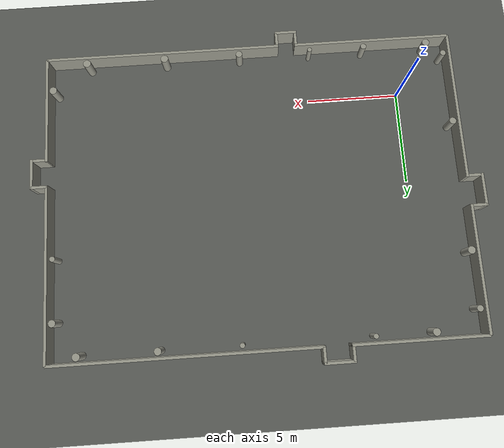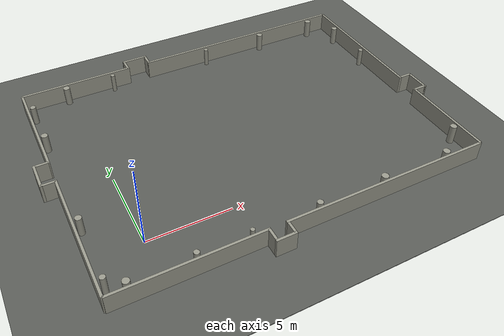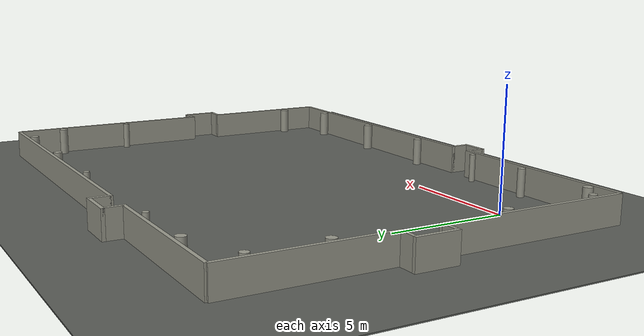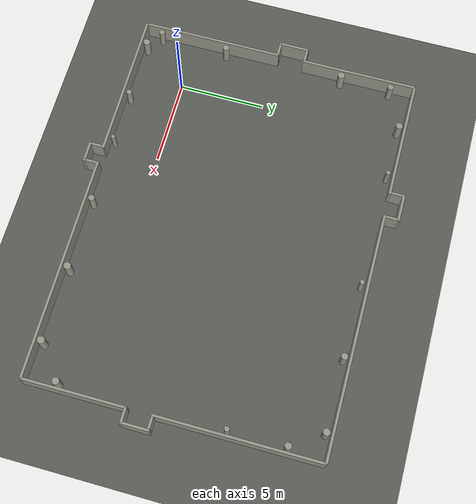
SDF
<sdf version="1.9">
 <world name="default">
  <model name="track_ground">
   <static>true</static>
   <link name="ground_link">
    <collision name="ground_collision">
     <pose>8.363762 5.082239 -0.025000 0.000000 0.000000 0.000000</pose>
     <geometry><box><size>80.000000 80.000000 0.050000</size></box></geometry>
     <surface>
      <friction><ode><mu>1.2</mu><mu2>1.2</mu2></ode></friction>
      <contact><ode><kp>100000.0</kp><kd>10.0</kd></ode></contact>
     </surface>
    </collision>
    <visual name="ground_visual">
     <pose>8.363762 5.082239 -0.025000 0.000000 0.000000 0.000000</pose>
     <geometry><box><size>80.000000 80.000000 0.050000</size></box></geometry>
     <material><ambient>0.35 0.36 0.34 1</ambient><diffuse>0.35 0.36 0.34 1</diffuse></material>
    </visual>
   </link>
  </model>
  <model name="track_room">
   <static>true</static>
   <link name="room_link">
    <collision name="hall_0_0_collision">
     <pose>1.310878 -3.000000 0.600000 0.000000 0.000000 0.000000</pose>
     <geometry><box><size>8.621756 0.150000 1.200000</size></box></geometry>
    </collision>
    <visual name="hall_0_0_visual">
     <pose>1.310878 -3.000000 0.600000 0.000000 0.000000 0.000000</pose>
     <geometry><box><size>8.621756 0.150000 1.200000</size></box></geometry>
     <material><ambient>0.6 0.6 0.55 1</ambient><diffuse>0.6 0.6 0.55 1</diffuse></material>
    </visual>
    <collision name="hall_0_95_collision">
     <pose>13.017378 -3.000000 0.600000 0.000000 0.000000 0.000000</pose>
     <geometry><box><size>12.965245 0.150000 1.200000</size></box></geometry>
    </collision>
    <visual name="hall_0_95_visual">
     <pose>13.017378 -3.000000 0.600000 0.000000 0.000000 0.000000</pose>
     <geometry><box><size>12.965245 0.150000 1.200000</size></box></geometry>
     <material><ambient>0.6 0.6 0.55 1</ambient><diffuse>0.6 0.6 0.55 1</diffuse></material>
    </visual>
    <collision name="hall_niche_0_collision">
     <pose>6.078255 -3.800000 0.600000 0.000000 0.000000 0.000000</pose>
     <geometry><box><size>1.213000 0.150000 1.200000</size></box></geometry>
    </collision>
    <visual name="hall_niche_0_visual">
     <pose>6.078255 -3.800000 0.600000 0.000000 0.000000 0.000000</pose>
     <geometry><box><size>1.213000 0.150000 1.200000</size></box></geometry>
     <material><ambient>0.6 0.6 0.55 1</ambient><diffuse>0.6 0.6 0.55 1</diffuse></material>
    </visual>
    <collision name="hall_jamb_0_-1_collision">
     <pose>5.546756 -3.400000 0.600000 0.000000 0.000000 0.000000</pose>
     <geometry><box><size>0.150000 0.800000 1.200000</size></box></geometry>
    </collision>
    <visual name="hall_jamb_0_-1_visual">
     <pose>5.546756 -3.400000 0.600000 0.000000 0.000000 0.000000</pose>
     <geometry><box><size>0.150000 0.800000 1.200000</size></box></geometry>
     <material><ambient>0.6 0.6 0.55 1</ambient><diffuse>0.6 0.6 0.55 1</diffuse></material>
    </visual>
    <collision name="hall_jamb_0_1_collision">
     <pose>6.609755 -3.400000 0.600000 0.000000 0.000000 0.000000</pose>
     <geometry><box><size>0.150000 0.800000 1.200000</size></box></geometry>
    </collision>
    <visual name="hall_jamb_0_1_visual">
     <pose>6.609755 -3.400000 0.600000 0.000000 0.000000 0.000000</pose>
     <geometry><box><size>0.150000 0.800000 1.200000</size></box></geometry>
     <material><ambient>0.6 0.6 0.55 1</ambient><diffuse>0.6 0.6 0.55 1</diffuse></material>
    </visual>
    <collision name="hall_1_0_collision">
     <pose>19.500000 -0.068882 0.600000 0.000000 0.000000 1.570796</pose>
     <geometry><box><size>5.862236 0.150000 1.200000</size></box></geometry>
    </collision>
    <visual name="hall_1_0_visual">
     <pose>19.500000 -0.068882 0.600000 0.000000 0.000000 1.570796</pose>
     <geometry><box><size>5.862236 0.150000 1.200000</size></box></geometry>
     <material><ambient>0.6 0.6 0.55 1</ambient><diffuse>0.6 0.6 0.55 1</diffuse></material>
    </visual>
    <collision name="hall_1_71_collision">
     <pose>19.500000 8.844853 0.600000 0.000000 0.000000 1.570796</pose>
     <geometry><box><size>9.310294 0.150000 1.200000</size></box></geometry>
    </collision>
    <visual name="hall_1_71_visual">
     <pose>19.500000 8.844853 0.600000 0.000000 0.000000 1.570796</pose>
     <geometry><box><size>9.310294 0.150000 1.200000</size></box></geometry>
     <material><ambient>0.6 0.6 0.55 1</ambient><diffuse>0.6 0.6 0.55 1</diffuse></material>
    </visual>
    <collision name="hall_niche_1_collision">
     <pose>20.300000 3.525971 0.600000 0.000000 0.000000 1.570796</pose>
     <geometry><box><size>1.627470 0.150000 1.200000</size></box></geometry>
    </collision>
    <visual name="hall_niche_1_visual">
     <pose>20.300000 3.525971 0.600000 0.000000 0.000000 1.570796</pose>
     <geometry><box><size>1.627470 0.150000 1.200000</size></box></geometry>
     <material><ambient>0.6 0.6 0.55 1</ambient><diffuse>0.6 0.6 0.55 1</diffuse></material>
    </visual>
    <collision name="hall_jamb_1_-1_collision">
     <pose>19.900000 2.787236 0.600000 0.000000 0.000000 1.570796</pose>
     <geometry><box><size>0.150000 0.800000 1.200000</size></box></geometry>
    </collision>
    <visual name="hall_jamb_1_-1_visual">
     <pose>19.900000 2.787236 0.600000 0.000000 0.000000 1.570796</pose>
     <geometry><box><size>0.150000 0.800000 1.200000</size></box></geometry>
     <material><ambient>0.6 0.6 0.55 1</ambient><diffuse>0.6 0.6 0.55 1</diffuse></material>
    </visual>
    <collision name="hall_jamb_1_1_collision">
     <pose>19.900000 4.264706 0.600000 0.000000 0.000000 1.570796</pose>
     <geometry><box><size>0.150000 0.800000 1.200000</size></box></geometry>
    </collision>
    <visual name="hall_jamb_1_1_visual">
     <pose>19.900000 4.264706 0.600000 0.000000 0.000000 1.570796</pose>
     <geometry><box><size>0.150000 0.800000 1.200000</size></box></geometry>
     <material><ambient>0.6 0.6 0.55 1</ambient><diffuse>0.6 0.6 0.55 1</diffuse></material>
    </visual>
    <collision name="hall_2_0_collision">
     <pose>12.443840 13.500000 0.600000 0.000000 0.000000 3.141593</pose>
     <geometry><box><size>14.112320 0.150000 1.200000</size></box></geometry>
    </collision>
    <visual name="hall_2_0_visual">
     <pose>12.443840 13.500000 0.600000 0.000000 0.000000 3.141593</pose>
     <geometry><box><size>14.112320 0.150000 1.200000</size></box></geometry>
     <material><ambient>0.6 0.6 0.55 1</ambient><diffuse>0.6 0.6 0.55 1</diffuse></material>
    </visual>
    <collision name="hall_2_154_collision">
     <pose>0.525991 13.500000 0.600000 0.000000 0.000000 3.141593</pose>
     <geometry><box><size>7.051982 0.150000 1.200000</size></box></geometry>
    </collision>
    <visual name="hall_2_154_visual">
     <pose>0.525991 13.500000 0.600000 0.000000 0.000000 3.141593</pose>
     <geometry><box><size>7.051982 0.150000 1.200000</size></box></geometry>
     <material><ambient>0.6 0.6 0.55 1</ambient><diffuse>0.6 0.6 0.55 1</diffuse></material>
    </visual>
    <collision name="hall_niche_2_collision">
     <pose>4.719831 14.300000 0.600000 0.000000 0.000000 3.141593</pose>
     <geometry><box><size>1.635698 0.150000 1.200000</size></box></geometry>
    </collision>
    <visual name="hall_niche_2_visual">
     <pose>4.719831 14.300000 0.600000 0.000000 0.000000 3.141593</pose>
     <geometry><box><size>1.635698 0.150000 1.200000</size></box></geometry>
     <material><ambient>0.6 0.6 0.55 1</ambient><diffuse>0.6 0.6 0.55 1</diffuse></material>
    </visual>
    <collision name="hall_jamb_2_-1_collision">
     <pose>5.462680 13.900000 0.600000 0.000000 0.000000 3.141593</pose>
     <geometry><box><size>0.150000 0.800000 1.200000</size></box></geometry>
    </collision>
    <visual name="hall_jamb_2_-1_visual">
     <pose>5.462680 13.900000 0.600000 0.000000 0.000000 3.141593</pose>
     <geometry><box><size>0.150000 0.800000 1.200000</size></box></geometry>
     <material><ambient>0.6 0.6 0.55 1</ambient><diffuse>0.6 0.6 0.55 1</diffuse></material>
    </visual>
    <collision name="hall_jamb_2_1_collision">
     <pose>3.976982 13.900000 0.600000 0.000000 0.000000 3.141593</pose>
     <geometry><box><size>0.150000 0.800000 1.200000</size></box></geometry>
    </collision>
    <visual name="hall_jamb_2_1_visual">
     <pose>3.976982 13.900000 0.600000 0.000000 0.000000 3.141593</pose>
     <geometry><box><size>0.150000 0.800000 1.200000</size></box></geometry>
     <material><ambient>0.6 0.6 0.55 1</ambient><diffuse>0.6 0.6 0.55 1</diffuse></material>
    </visual>
    <collision name="hall_3_0_collision">
     <pose>-3.000000 10.110790 0.600000 0.000000 0.000000 -1.570796</pose>
     <geometry><box><size>6.778420 0.150000 1.200000</size></box></geometry>
    </collision>
    <visual name="hall_3_0_visual">
     <pose>-3.000000 10.110790 0.600000 0.000000 0.000000 -1.570796</pose>
     <geometry><box><size>6.778420 0.150000 1.200000</size></box></geometry>
     <material><ambient>0.6 0.6 0.55 1</ambient><diffuse>0.6 0.6 0.55 1</diffuse></material>
    </visual>
    <collision name="hall_3_82_collision">
     <pose>-3.000000 1.117884 0.600000 0.000000 0.000000 -1.570796</pose>
     <geometry><box><size>8.235767 0.150000 1.200000</size></box></geometry>
    </collision>
    <visual name="hall_3_82_visual">
     <pose>-3.000000 1.117884 0.600000 0.000000 0.000000 -1.570796</pose>
     <geometry><box><size>8.235767 0.150000 1.200000</size></box></geometry>
     <material><ambient>0.6 0.6 0.55 1</ambient><diffuse>0.6 0.6 0.55 1</diffuse></material>
    </visual>
    <collision name="hall_niche_3_collision">
     <pose>-3.800000 5.978674 0.600000 0.000000 0.000000 -1.570796</pose>
     <geometry><box><size>1.785813 0.150000 1.200000</size></box></geometry>
    </collision>
    <visual name="hall_niche_3_visual">
     <pose>-3.800000 5.978674 0.600000 0.000000 0.000000 -1.570796</pose>
     <geometry><box><size>1.785813 0.150000 1.200000</size></box></geometry>
     <material><ambient>0.6 0.6 0.55 1</ambient><diffuse>0.6 0.6 0.55 1</diffuse></material>
    </visual>
    <collision name="hall_jamb_3_-1_collision">
     <pose>-3.400000 6.796580 0.600000 0.000000 0.000000 -1.570796</pose>
     <geometry><box><size>0.150000 0.800000 1.200000</size></box></geometry>
    </collision>
    <visual name="hall_jamb_3_-1_visual">
     <pose>-3.400000 6.796580 0.600000 0.000000 0.000000 -1.570796</pose>
     <geometry><box><size>0.150000 0.800000 1.200000</size></box></geometry>
     <material><ambient>0.6 0.6 0.55 1</ambient><diffuse>0.6 0.6 0.55 1</diffuse></material>
    </visual>
    <collision name="hall_jamb_3_1_collision">
     <pose>-3.400000 5.160767 0.600000 0.000000 0.000000 -1.570796</pose>
     <geometry><box><size>0.150000 0.800000 1.200000</size></box></geometry>
    </collision>
    <visual name="hall_jamb_3_1_visual">
     <pose>-3.400000 5.160767 0.600000 0.000000 0.000000 -1.570796</pose>
     <geometry><box><size>0.150000 0.800000 1.200000</size></box></geometry>
     <material><ambient>0.6 0.6 0.55 1</ambient><diffuse>0.6 0.6 0.55 1</diffuse></material>
    </visual>
    <collision name="column_0_12_collision">
     <pose>-1.760781 -2.650000 0.600000 0.000000 0.000000 0.000000</pose>
     <geometry><cylinder><radius>0.200121</radius><length>1.200000</length></cylinder></geometry>
    </collision>
    <visual name="column_0_12_visual">
     <pose>-1.760781 -2.650000 0.600000 0.000000 0.000000 0.000000</pose>
     <geometry><cylinder><radius>0.200121</radius><length>1.200000</length></cylinder></geometry>
     <material><ambient>0.6 0.6 0.55 1</ambient><diffuse>0.6 0.6 0.55 1</diffuse></material>
    </visual>
    <collision name="column_0_47_collision">
     <pose>1.769769 -2.650000 0.600000 0.000000 0.000000 0.000000</pose>
     <geometry><cylinder><radius>0.160983</radius><length>1.200000</length></cylinder></geometry>
    </collision>
    <visual name="column_0_47_visual">
     <pose>1.769769 -2.650000 0.600000 0.000000 0.000000 0.000000</pose>
     <geometry><cylinder><radius>0.160983</radius><length>1.200000</length></cylinder></geometry>
     <material><ambient>0.6 0.6 0.55 1</ambient><diffuse>0.6 0.6 0.55 1</diffuse></material>
    </visual>
    <collision name="column_0_78_collision">
     <pose>4.801967 -2.650000 0.600000 0.000000 0.000000 0.000000</pose>
     <geometry><cylinder><radius>0.123119</radius><length>1.200000</length></cylinder></geometry>
    </collision>
    <visual name="column_0_78_visual">
     <pose>4.801967 -2.650000 0.600000 0.000000 0.000000 0.000000</pose>
     <geometry><cylinder><radius>0.123119</radius><length>1.200000</length></cylinder></geometry>
     <material><ambient>0.6 0.6 0.55 1</ambient><diffuse>0.6 0.6 0.55 1</diffuse></material>
    </visual>
    <collision name="column_0_117_collision">
     <pose>8.773232 -2.650000 0.600000 0.000000 0.000000 0.000000</pose>
     <geometry><cylinder><radius>0.179637</radius><length>1.200000</length></cylinder></geometry>
    </collision>
    <visual name="column_0_117_visual">
     <pose>8.773232 -2.650000 0.600000 0.000000 0.000000 0.000000</pose>
     <geometry><cylinder><radius>0.179637</radius><length>1.200000</length></cylinder></geometry>
     <material><ambient>0.6 0.6 0.55 1</ambient><diffuse>0.6 0.6 0.55 1</diffuse></material>
    </visual>
    <collision name="column_0_159_collision">
     <pose>12.956126 -2.650000 0.600000 0.000000 0.000000 0.000000</pose>
     <geometry><cylinder><radius>0.210621</radius><length>1.200000</length></cylinder></geometry>
    </collision>
    <visual name="column_0_159_visual">
     <pose>12.956126 -2.650000 0.600000 0.000000 0.000000 0.000000</pose>
     <geometry><cylinder><radius>0.210621</radius><length>1.200000</length></cylinder></geometry>
     <material><ambient>0.6 0.6 0.55 1</ambient><diffuse>0.6 0.6 0.55 1</diffuse></material>
    </visual>
    <collision name="column_0_202_collision">
     <pose>17.278766 -2.650000 0.600000 0.000000 0.000000 0.000000</pose>
     <geometry><cylinder><radius>0.212296</radius><length>1.200000</length></cylinder></geometry>
    </collision>
    <visual name="column_0_202_visual">
     <pose>17.278766 -2.650000 0.600000 0.000000 0.000000 0.000000</pose>
     <geometry><cylinder><radius>0.212296</radius><length>1.200000</length></cylinder></geometry>
     <material><ambient>0.6 0.6 0.55 1</ambient><diffuse>0.6 0.6 0.55 1</diffuse></material>
    </visual>
    <collision name="column_1_18_collision">
     <pose>19.150000 -1.169042 0.600000 0.000000 0.000000 0.000000</pose>
     <geometry><cylinder><radius>0.204187</radius><length>1.200000</length></cylinder></geometry>
    </collision>
    <visual name="column_1_18_visual">
     <pose>19.150000 -1.169042 0.600000 0.000000 0.000000 0.000000</pose>
     <geometry><cylinder><radius>0.204187</radius><length>1.200000</length></cylinder></geometry>
     <material><ambient>0.6 0.6 0.55 1</ambient><diffuse>0.6 0.6 0.55 1</diffuse></material>
    </visual>
    <collision name="column_1_111_collision">
     <pose>19.150000 8.146889 0.600000 0.000000 0.000000 0.000000</pose>
     <geometry><cylinder><radius>0.147459</radius><length>1.200000</length></cylinder></geometry>
    </collision>
    <visual name="column_1_111_visual">
     <pose>19.150000 8.146889 0.600000 0.000000 0.000000 0.000000</pose>
     <geometry><cylinder><radius>0.147459</radius><length>1.200000</length></cylinder></geometry>
     <material><ambient>0.6 0.6 0.55 1</ambient><diffuse>0.6 0.6 0.55 1</diffuse></material>
    </visual>
    <collision name="column_1_144_collision">
     <pose>19.150000 11.416352 0.600000 0.000000 0.000000 0.000000</pose>
     <geometry><cylinder><radius>0.190601</radius><length>1.200000</length></cylinder></geometry>
    </collision>
    <visual name="column_1_144_visual">
     <pose>19.150000 11.416352 0.600000 0.000000 0.000000 0.000000</pose>
     <geometry><cylinder><radius>0.190601</radius><length>1.200000</length></cylinder></geometry>
     <material><ambient>0.6 0.6 0.55 1</ambient><diffuse>0.6 0.6 0.55 1</diffuse></material>
    </visual>
    <collision name="column_2_15_collision">
     <pose>17.939747 13.150000 0.600000 0.000000 0.000000 0.000000</pose>
     <geometry><cylinder><radius>0.202009</radius><length>1.200000</length></cylinder></geometry>
    </collision>
    <visual name="column_2_15_visual">
     <pose>17.939747 13.150000 0.600000 0.000000 0.000000 0.000000</pose>
     <geometry><cylinder><radius>0.202009</radius><length>1.200000</length></cylinder></geometry>
     <material><ambient>0.6 0.6 0.55 1</ambient><diffuse>0.6 0.6 0.55 1</diffuse></material>
    </visual>
    <collision name="column_2_56_collision">
     <pose>13.833426 13.150000 0.600000 0.000000 0.000000 0.000000</pose>
     <geometry><cylinder><radius>0.191505</radius><length>1.200000</length></cylinder></geometry>
    </collision>
    <visual name="column_2_56_visual">
     <pose>13.833426 13.150000 0.600000 0.000000 0.000000 0.000000</pose>
     <geometry><cylinder><radius>0.191505</radius><length>1.200000</length></cylinder></geometry>
     <material><ambient>0.6 0.6 0.55 1</ambient><diffuse>0.6 0.6 0.55 1</diffuse></material>
    </visual>
    <collision name="column_2_99_collision">
     <pose>9.567822 13.150000 0.600000 0.000000 0.000000 0.000000</pose>
     <geometry><cylinder><radius>0.134890</radius><length>1.200000</length></cylinder></geometry>
    </collision>
    <visual name="column_2_99_visual">
     <pose>9.567822 13.150000 0.600000 0.000000 0.000000 0.000000</pose>
     <geometry><cylinder><radius>0.134890</radius><length>1.200000</length></cylinder></geometry>
     <material><ambient>0.6 0.6 0.55 1</ambient><diffuse>0.6 0.6 0.55 1</diffuse></material>
    </visual>
    <collision name="column_2_166_collision">
     <pose>2.800690 13.150000 0.600000 0.000000 0.000000 0.000000</pose>
     <geometry><cylinder><radius>0.132710</radius><length>1.200000</length></cylinder></geometry>
    </collision>
    <visual name="column_2_166_visual">
     <pose>2.800690 13.150000 0.600000 0.000000 0.000000 0.000000</pose>
     <geometry><cylinder><radius>0.132710</radius><length>1.200000</length></cylinder></geometry>
     <material><ambient>0.6 0.6 0.55 1</ambient><diffuse>0.6 0.6 0.55 1</diffuse></material>
    </visual>
    <collision name="column_2_197_collision">
     <pose>-0.281366 13.150000 0.600000 0.000000 0.000000 0.000000</pose>
     <geometry><cylinder><radius>0.200703</radius><length>1.200000</length></cylinder></geometry>
    </collision>
    <visual name="column_2_197_visual">
     <pose>-0.281366 13.150000 0.600000 0.000000 0.000000 0.000000</pose>
     <geometry><cylinder><radius>0.200703</radius><length>1.200000</length></cylinder></geometry>
     <material><ambient>0.6 0.6 0.55 1</ambient><diffuse>0.6 0.6 0.55 1</diffuse></material>
    </visual>
    <collision name="column_3_13_collision">
     <pose>-2.650000 12.135070 0.600000 0.000000 0.000000 0.000000</pose>
     <geometry><cylinder><radius>0.171462</radius><length>1.200000</length></cylinder></geometry>
    </collision>
    <visual name="column_3_13_visual">
     <pose>-2.650000 12.135070 0.600000 0.000000 0.000000 0.000000</pose>
     <geometry><cylinder><radius>0.171462</radius><length>1.200000</length></cylinder></geometry>
     <material><ambient>0.6 0.6 0.55 1</ambient><diffuse>0.6 0.6 0.55 1</diffuse></material>
    </visual>
    <collision name="column_3_43_collision">
     <pose>-2.650000 9.151755 0.600000 0.000000 0.000000 0.000000</pose>
     <geometry><cylinder><radius>0.201931</radius><length>1.200000</length></cylinder></geometry>
    </collision>
    <visual name="column_3_43_visual">
     <pose>-2.650000 9.151755 0.600000 0.000000 0.000000 0.000000</pose>
     <geometry><cylinder><radius>0.201931</radius><length>1.200000</length></cylinder></geometry>
     <material><ambient>0.6 0.6 0.55 1</ambient><diffuse>0.6 0.6 0.55 1</diffuse></material>
    </visual>
    <collision name="column_3_114_collision">
     <pose>-2.650000 2.056969 0.600000 0.000000 0.000000 0.000000</pose>
     <geometry><cylinder><radius>0.187801</radius><length>1.200000</length></cylinder></geometry>
    </collision>
    <visual name="column_3_114_visual">
     <pose>-2.650000 2.056969 0.600000 0.000000 0.000000 0.000000</pose>
     <geometry><cylinder><radius>0.187801</radius><length>1.200000</length></cylinder></geometry>
     <material><ambient>0.6 0.6 0.55 1</ambient><diffuse>0.6 0.6 0.55 1</diffuse></material>
    </visual>
    <collision name="column_3_154_collision">
     <pose>-2.650000 -1.958473 0.600000 0.000000 0.000000 0.000000</pose>
     <geometry><cylinder><radius>0.160030</radius><length>1.200000</length></cylinder></geometry>
    </collision>
    <visual name="column_3_154_visual">
     <pose>-2.650000 -1.958473 0.600000 0.000000 0.000000 0.000000</pose>
     <geometry><cylinder><radius>0.160030</radius><length>1.200000</length></cylinder></geometry>
     <material><ambient>0.6 0.6 0.55 1</ambient><diffuse>0.6 0.6 0.55 1</diffuse></material>
    </visual>
   </link>
  </model>
 </world>
</sdf>
